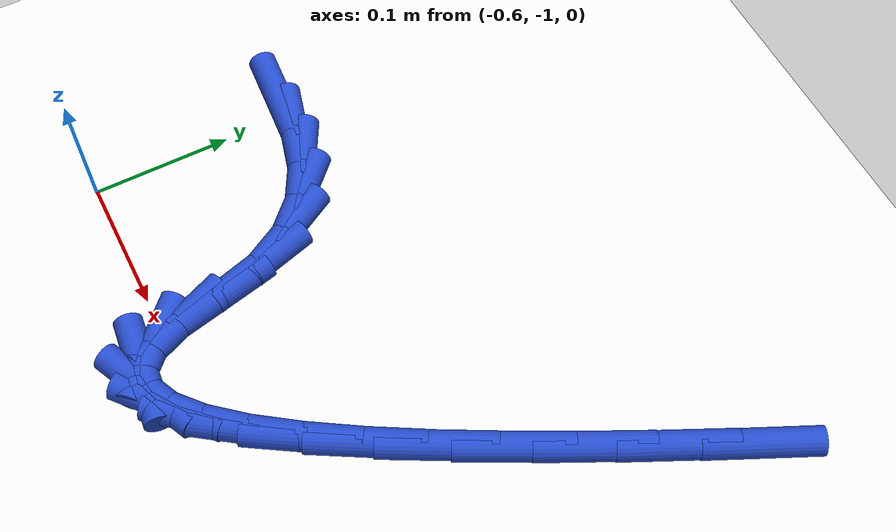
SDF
<sdf version="1.6">
 <world name="default">
  <model name="ground_plane">
   <static>1</static>
   <link name="link">
    <collision name="collision">
     <geometry><plane><normal>0 0 1</normal><size>100 100</size></plane></geometry>
     <surface><friction><ode><mu>100</mu><mu2>50</mu2></ode></friction></surface>
    </collision>
    <visual name="visual">
     <cast_shadows>0</cast_shadows>
     <geometry><plane><normal>0 0 1</normal><size>100 100</size></plane></geometry>
     <material>
      <script><uri>file://media/materials/scripts/gazebo.material</uri><name>Gazebo/WhiteGlow</name></script>
     </material>
    </visual>
   </link>
  </model>
  <model name="line">
   <link name="link_211">
    <pose>-0.6067106895984902 -0.8531709990889728 0.01 0 1.57 -0.07655607665557933</pose>
    <collision name="collision">
     <geometry><cylinder><radius>0.01</radius><length>0.08</length></cylinder></geometry>
    </collision>
    <visual name="visual">
     <material>
      <script><name>Gazebo/Blue</name><uri>file://media/materials/scripts/gazebo.material</uri></script>
     </material>
     <geometry><cylinder><radius>0.01</radius><length>0.08</length></cylinder></geometry>
    </visual>
   </link>
   <link name="link_212">
    <pose>-0.5743938819900452 -0.8556498917746651 0.01 0 1.57 -0.25898350422645716</pose>
    <collision name="collision">
     <geometry><cylinder><radius>0.01</radius><length>0.08</length></cylinder></geometry>
    </collision>
    <visual name="visual">
     <material>
      <script><name>Gazebo/Blue</name><uri>file://media/materials/scripts/gazebo.material</uri></script>
     </material>
     <geometry><cylinder><radius>0.01</radius><length>0.08</length></cylinder></geometry>
    </visual>
   </link>
   <link name="link_213">
    <pose>-0.545587519539015 -0.8632816594643679 0.01 0 1.57 -0.4929670026414979</pose>
    <collision name="collision">
     <geometry><cylinder><radius>0.01</radius><length>0.08</length></cylinder></geometry>
    </collision>
    <visual name="visual">
     <material>
      <script><name>Gazebo/Blue</name><uri>file://media/materials/scripts/gazebo.material</uri></script>
     </material>
     <geometry><cylinder><radius>0.01</radius><length>0.08</length></cylinder></geometry>
    </visual>
   </link>
   <link name="link_214">
    <pose>-0.5208122644461253 -0.8765910583617296 0.01 0 1.57 -0.767489058928512</pose>
    <collision name="collision">
     <geometry><cylinder><radius>0.01</radius><length>0.08</length></cylinder></geometry>
    </collision>
    <visual name="visual">
     <material>
      <script><name>Gazebo/Blue</name><uri>file://media/materials/scripts/gazebo.material</uri></script>
     </material>
     <geometry><cylinder><radius>0.01</radius><length>0.08</length></cylinder></geometry>
    </visual>
   </link>
   <link name="link_215">
    <pose>-0.5005887789121022 -0.8961028446704002 0.01 0 1.57 -1.0471403712619602</pose>
    <collision name="collision">
     <geometry><cylinder><radius>0.01</radius><length>0.08</length></cylinder></geometry>
    </collision>
    <visual name="visual">
     <material>
      <script><name>Gazebo/Blue</name><uri>file://media/materials/scripts/gazebo.material</uri></script>
     </material>
     <geometry><cylinder><radius>0.01</radius><length>0.08</length></cylinder></geometry>
    </visual>
   </link>
   <link name="link_216">
    <pose>-0.48543772513767164 -0.9223417745940291 0.01 0 1.57 -1.2836426591433951</pose>
    <collision name="collision">
     <geometry><cylinder><radius>0.01</radius><length>0.08</length></cylinder></geometry>
    </collision>
    <visual name="visual">
     <material>
      <script><name>Gazebo/Blue</name><uri>file://media/materials/scripts/gazebo.material</uri></script>
     </material>
     <geometry><cylinder><radius>0.01</radius><length>0.08</length></cylinder></geometry>
    </visual>
   </link>
   <link name="link_217">
    <pose>-0.4756762712821429 -0.9553960850388002 0.01 0 1.57 -1.345911543526397</pose>
    <collision name="collision">
     <geometry><cylinder><radius>0.01</radius><length>0.08</length></cylinder></geometry>
    </collision>
    <visual name="visual">
     <material>
      <script><name>Gazebo/Blue</name><uri>file://media/materials/scripts/gazebo.material</uri></script>
     </material>
     <geometry><cylinder><radius>0.01</radius><length>0.08</length></cylinder></geometry>
    </visual>
   </link>
   <link name="link_218">
    <pose>-0.46820981404420126 -0.9880357472221136 0.01 0 1.57 -1.1669528133994096</pose>
    <collision name="collision">
     <geometry><cylinder><radius>0.01</radius><length>0.08</length></cylinder></geometry>
    </collision>
    <visual name="visual">
     <material>
      <script><name>Gazebo/Blue</name><uri>file://media/materials/scripts/gazebo.material</uri></script>
     </material>
     <geometry><cylinder><radius>0.01</radius><length>0.08</length></cylinder></geometry>
    </visual>
   </link>
   <link name="link_219">
    <pose>-0.45863235715853873 -1.010448006148819 0.01 0 1.57 -0.7611734591127829</pose>
    <collision name="collision">
     <geometry><cylinder><radius>0.01</radius><length>0.08</length></cylinder></geometry>
    </collision>
    <visual name="visual">
     <material>
      <script><name>Gazebo/Blue</name><uri>file://media/materials/scripts/gazebo.material</uri></script>
     </material>
     <geometry><cylinder><radius>0.01</radius><length>0.08</length></cylinder></geometry>
    </visual>
   </link>
   <link name="link_220">
    <pose>-0.44652263062876046 -1.0219847908577386 0.01 0 1.57 -0.10811244329272193</pose>
    <collision name="collision">
     <geometry><cylinder><radius>0.01</radius><length>0.08</length></cylinder></geometry>
    </collision>
    <visual name="visual">
     <material>
      <script><name>Gazebo/Blue</name><uri>file://media/materials/scripts/gazebo.material</uri></script>
     </material>
     <geometry><cylinder><radius>0.01</radius><length>0.08</length></cylinder></geometry>
    </visual>
   </link>
   <link name="link_221">
    <pose>-0.4321335865729066 -1.0235465149472465 0.01 0 1.57 0.42921811795157516</pose>
    <collision name="collision">
     <geometry><cylinder><radius>0.01</radius><length>0.08</length></cylinder></geometry>
    </collision>
    <visual name="visual">
     <material>
      <script><name>Gazebo/Blue</name><uri>file://media/materials/scripts/gazebo.material</uri></script>
     </material>
     <geometry><cylinder><radius>0.01</radius><length>0.08</length></cylinder></geometry>
    </visual>
   </link>
   <link name="link_222">
    <pose>-0.41571817710901765 -1.016033592015717 0.01 0 1.57 0.7116841726027926</pose>
    <collision name="collision">
     <geometry><cylinder><radius>0.01</radius><length>0.08</length></cylinder></geometry>
    </collision>
    <visual name="visual">
     <material>
      <script><name>Gazebo/Blue</name><uri>file://media/materials/scripts/gazebo.material</uri></script>
     </material>
     <geometry><cylinder><radius>0.01</radius><length>0.08</length></cylinder></geometry>
    </visual>
   </link>
   <link name="link_223">
    <pose>-0.39752935435513354 -1.000346435661524 0.01 0 1.57 0.8614562810438144</pose>
    <collision name="collision">
     <geometry><cylinder><radius>0.01</radius><length>0.08</length></cylinder></geometry>
    </collision>
    <visual name="visual">
     <material>
      <script><name>Gazebo/Blue</name><uri>file://media/materials/scripts/gazebo.material</uri></script>
     </material>
     <geometry><cylinder><radius>0.01</radius><length>0.08</length></cylinder></geometry>
    </visual>
   </link>
   <link name="link_224">
    <pose>-0.37782007042929455 -0.9773854594830419 0.01 0 1.57 0.9500129089502318</pose>
    <collision name="collision">
     <geometry><cylinder><radius>0.01</radius><length>0.08</length></cylinder></geometry>
    </collision>
    <visual name="visual">
     <material>
      <script><name>Gazebo/Blue</name><uri>file://media/materials/scripts/gazebo.material</uri></script>
     </material>
     <geometry><cylinder><radius>0.01</radius><length>0.08</length></cylinder></geometry>
    </visual>
   </link>
   <link name="link_225">
    <pose>-0.3568432774495407 -0.9480510770786442 0.01 0 1.57 1.007321027002634</pose>
    <collision name="collision">
     <geometry><cylinder><radius>0.01</radius><length>0.08</length></cylinder></geometry>
    </collision>
    <visual name="visual">
     <material>
      <script><name>Gazebo/Blue</name><uri>file://media/materials/scripts/gazebo.material</uri></script>
     </material>
     <geometry><cylinder><radius>0.01</radius><length>0.08</length></cylinder></geometry>
    </visual>
   </link>
   <link name="link_226">
    <pose>-0.33485192753391235 -0.9132437020467056 0.01 0 1.57 1.0468752202310438</pose>
    <collision name="collision">
     <geometry><cylinder><radius>0.01</radius><length>0.08</length></cylinder></geometry>
    </collision>
    <visual name="visual">
     <material>
      <script><name>Gazebo/Blue</name><uri>file://media/materials/scripts/gazebo.material</uri></script>
     </material>
     <geometry><cylinder><radius>0.01</radius><length>0.08</length></cylinder></geometry>
    </visual>
   </link>
   <link name="link_227">
    <pose>-0.31209897280044985 -0.8738637479856002 0.01 0 1.57 1.0754209829934596</pose>
    <collision name="collision">
     <geometry><cylinder><radius>0.01</radius><length>0.08</length></cylinder></geometry>
    </collision>
    <visual name="visual">
     <material>
      <script><name>Gazebo/Blue</name><uri>file://media/materials/scripts/gazebo.material</uri></script>
     </material>
     <geometry><cylinder><radius>0.01</radius><length>0.08</length></cylinder></geometry>
    </visual>
   </link>
   <link name="link_228">
    <pose>-0.2888373653671932 -0.8308116284937017 0.01 0 1.57 1.0966359789423208</pose>
    <collision name="collision">
     <geometry><cylinder><radius>0.01</radius><length>0.08</length></cylinder></geometry>
    </collision>
    <visual name="visual">
     <material>
      <script><name>Gazebo/Blue</name><uri>file://media/materials/scripts/gazebo.material</uri></script>
     </material>
     <geometry><cylinder><radius>0.01</radius><length>0.08</length></cylinder></geometry>
    </visual>
   </link>
   <link name="link_229">
    <pose>-0.2653200573521825 -0.7849877571693846 0.01 0 1.57 1.1126578200845327</pose>
    <collision name="collision">
     <geometry><cylinder><radius>0.01</radius><length>0.08</length></cylinder></geometry>
    </collision>
    <visual name="visual">
     <material>
      <script><name>Gazebo/Blue</name><uri>file://media/materials/scripts/gazebo.material</uri></script>
     </material>
     <geometry><cylinder><radius>0.01</radius><length>0.08</length></cylinder></geometry>
    </visual>
   </link>
   <link name="link_230">
    <pose>-0.2418000008734582 -0.7372925476110228 0.01 0 1.57 1.124778658385551</pose>
    <collision name="collision">
     <geometry><cylinder><radius>0.01</radius><length>0.08</length></cylinder></geometry>
    </collision>
    <visual name="visual">
     <material>
      <script><name>Gazebo/Blue</name><uri>file://media/materials/scripts/gazebo.material</uri></script>
     </material>
     <geometry><cylinder><radius>0.01</radius><length>0.08</length></cylinder></geometry>
    </visual>
   </link>
   <link name="link_231">
    <pose>-0.21853014804906024 -0.6886264134169905 0.01 0 1.57 1.1337828992945795</pose>
    <collision name="collision">
     <geometry><cylinder><radius>0.01</radius><length>0.08</length></cylinder></geometry>
    </collision>
    <visual name="visual">
     <material>
      <script><name>Gazebo/Blue</name><uri>file://media/materials/scripts/gazebo.material</uri></script>
     </material>
     <geometry><cylinder><radius>0.01</radius><length>0.08</length></cylinder></geometry>
    </visual>
   </link>
  </model>
 </world>
</sdf>
